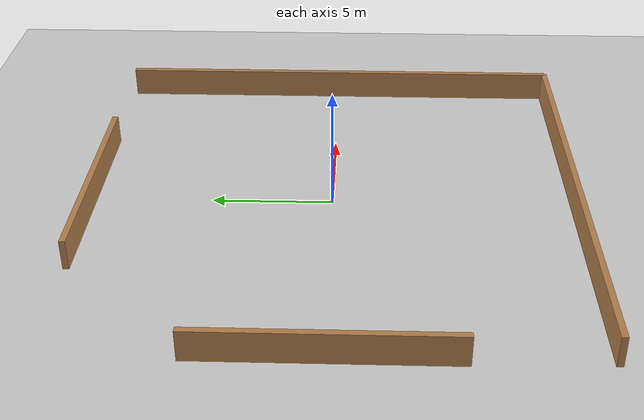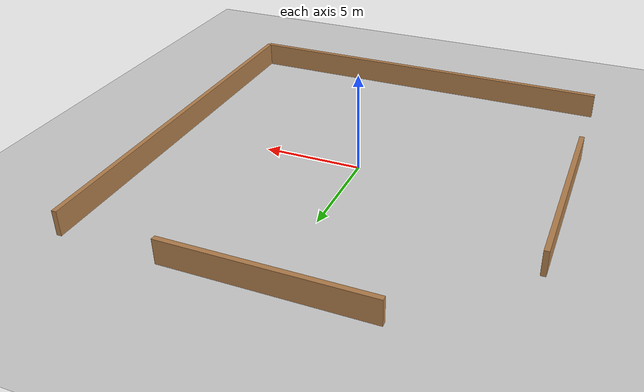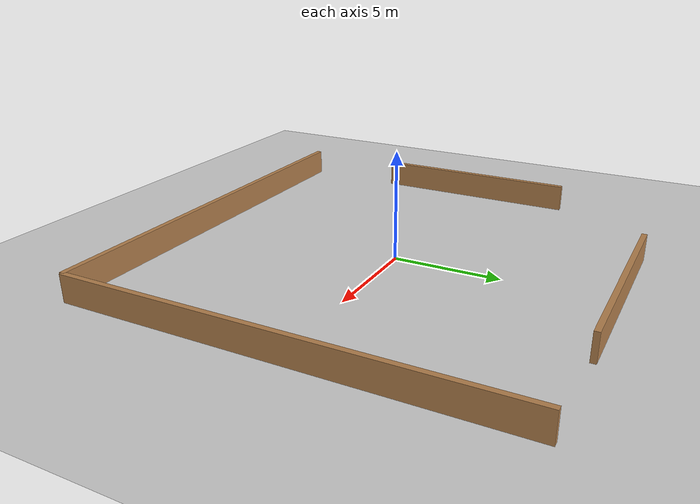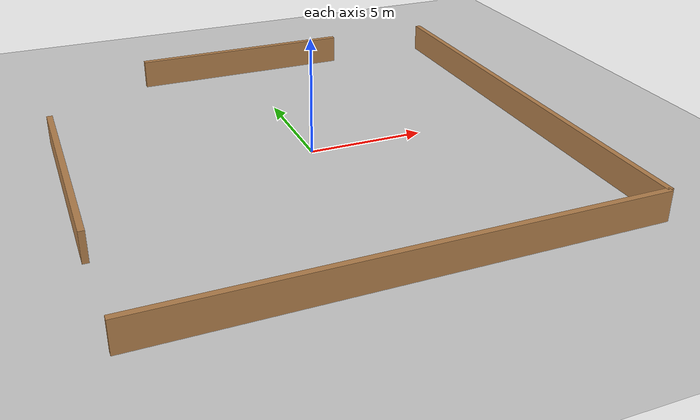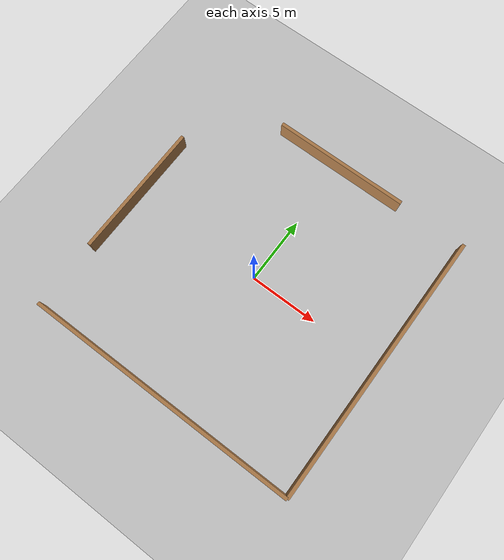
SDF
<?xml version="1.0" ?>
<sdf version="1.7">
  <world name="default">
    <plugin name="gazebo_ros_state" filename="libgazebo_ros_state.so">
      <ros>
        <namespace>/test</namespace>
        <argument>model_states:=model_states_demo</argument>
      </ros>
      <update_rate>1.0</update_rate>
    </plugin>
    <model name='ground_plane'>
      <static>1</static>
      <link name='link'>
        <collision name='collision'>
          <geometry>
            <plane>
              <normal>0 0 1</normal>
              <size>50 50</size>
            </plane>
          </geometry>
          <surface>
            <contact>
              <collide_bitmask>65535</collide_bitmask>
              <ode/>
            </contact>
            <friction>
              <ode>
                <mu>100</mu>
                <mu2>50</mu2>
              </ode>
              <torsional>
                <ode/>
              </torsional>
            </friction>
            <bounce/>
          </surface>
          <max_contacts>10</max_contacts>
        </collision>
        <visual name='visual'>
          <cast_shadows>0</cast_shadows>
          <geometry>
            <plane>
              <normal>0 0 1</normal>
              <size>50 50</size>
            </plane>
          </geometry>
          <material>
            <script>
              <uri>file://media/materials/scripts/gazebo.material</uri>
              <name>Gazebo/Grey</name>
            </script>
          </material>
        </visual>
        <self_collide>0</self_collide>
        <enable_wind>0</enable_wind>
        <kinematic>0</kinematic>
      </link>
    </model>
    <light name='sun' type='directional'>
      <cast_shadows>1</cast_shadows>
      <pose>0 0 10 0 -0 0</pose>
      <diffuse>0.8 0.8 0.8 1</diffuse>
      <specular>0.2 0.2 0.2 1</specular>
      <attenuation>
        <range>1000</range>
        <constant>0.9</constant>
        <linear>0.01</linear>
        <quadratic>0.001</quadratic>
      </attenuation>
      <direction>-0.5 0.1 -0.9</direction>
      <spot>
        <inner_angle>0</inner_angle>
        <outer_angle>0</outer_angle>
        <falloff>0</falloff>
      </spot>
    </light>
    <scene>
      <shadows>0</shadows>
      <ambient>0.4 0.4 0.4 1</ambient>
      <background>0.7 0.7 0.7 1</background>
    </scene>
    <gui fullscreen='0'>
      <camera name='user_camera'>
        <pose>0.114245 -3.45755 33.7709 0 1.5698 -0.010384</pose>
        <view_controller>orbit</view_controller>
        <projection_type>perspective</projection_type>
      </camera>
    </gui>
    <physics type='ode'>
      <real_time_update_rate>1000</real_time_update_rate>
      <max_step_size>0.001</max_step_size>
      <real_time_factor>1</real_time_factor>
      <ode>
        <solver>
          <type>quick</type>
          <iters>150</iters>
          <precon_iters>0</precon_iters>
          <sor>1.4</sor>
          <use_dynamic_moi_rescaling>1</use_dynamic_moi_rescaling>
        </solver>
        <constraints>
          <cfm>1e-05</cfm>
          <erp>0.2</erp>
          <contact_max_correcting_vel>2000</contact_max_correcting_vel>
          <contact_surface_layer>0.01</contact_surface_layer>
        </constraints>
      </ode>
    </physics>
    <model name='room_square'>
      <pose>0 0 0 0 -0 0</pose>
      <link name='Wall_1'>
        <collision name='Wall_1_Collision'>
          <geometry>
            <box>
              <size>20 0.25 2</size>
            </box>
          </geometry>
          <pose>0 0 0.25 0 -0 0</pose>
          <max_contacts>10</max_contacts>
          <surface>
            <contact>
              <ode/>
            </contact>
            <bounce/>
            <friction>
              <torsional>
                <ode/>
              </torsional>
              <ode/>
            </friction>
          </surface>
        </collision>
        <visual name='Wall_1_Visual'>
          <pose>0 0 0.25 0 -0 0</pose>
          <geometry>
            <box>
              <size>10 0.25 2</size>
            </box>
          </geometry>
          <material>
            <script>
              <uri>file://media/materials/scripts/gazebo.material</uri>
              <name>Gazebo/Wood</name>
            </script>
            <ambient>1 1 1 1</ambient>
          </material>
        </visual>
        <pose>-10 0 0 0 -0 1.5708</pose>
        <self_collide>0</self_collide>
        <enable_wind>0</enable_wind>
        <kinematic>0</kinematic>
      </link>
      <link name='Wall_2'>
        <collision name='Wall_2_Collision'>
          <geometry>
            <box>
              <size>20 0.25 2</size>
            </box>
          </geometry>
          <pose>0 0 0.25 0 -0 0</pose>
          <max_contacts>10</max_contacts>
          <surface>
            <contact>
              <ode/>
            </contact>
            <bounce/>
            <friction>
              <torsional>
                <ode/>
              </torsional>
              <ode/>
            </friction>
          </surface>
        </collision>
        <visual name='Wall_2_Visual'>
          <pose>0 0 0.25 0 -0 0</pose>
          <geometry>
            <box>
              <size>10 0.25 2</size>
            </box>
          </geometry>
          <material>
            <script>
              <uri>file://media/materials/scripts/gazebo.material</uri>
              <name>Gazebo/Wood</name>
            </script>
            <ambient>1 1 1 1</ambient>
          </material>
        </visual>
        <pose>0 10 0 0 -0 0</pose>
        <self_collide>0</self_collide>
        <enable_wind>0</enable_wind>
        <kinematic>0</kinematic>
      </link>
      <link name='Wall_3'>
        <collision name='Wall_3_Collision'>
          <geometry>
            <box>
              <size>20 0.25 2</size>
            </box>
          </geometry>
          <pose>0 0 0.25 0 -0 0</pose>
          <max_contacts>10</max_contacts>
          <surface>
            <contact>
              <ode/>
            </contact>
            <bounce/>
            <friction>
              <torsional>
                <ode/>
              </torsional>
              <ode/>
            </friction>
          </surface>
        </collision>
        <visual name='Wall_3_Visual'>
          <pose>0 0 0.25 0 -0 0</pose>
          <geometry>
            <box>
              <size>20 0.25 2</size>
            </box>
          </geometry>
          <material>
            <script>
              <uri>file://media/materials/scripts/gazebo.material</uri>
              <name>Gazebo/Wood</name>
            </script>
            <ambient>1 1 1 1</ambient>
          </material>
        </visual>
        <pose>10 0 0 0 0 -1.5708</pose>
        <self_collide>0</self_collide>
        <enable_wind>0</enable_wind>
        <kinematic>0</kinematic>
      </link>
      <link name='Wall_4'>
        <collision name='Wall_4_Collision'>
          <geometry>
            <box>
              <size>20 0.25 2</size>
            </box>
          </geometry>
          <pose>0 0 0.25 0 -0 0</pose>
          <max_contacts>10</max_contacts>
          <surface>
            <contact>
              <ode/>
            </contact>
            <bounce/>
            <friction>
              <torsional>
                <ode/>
              </torsional>
              <ode/>
            </friction>
          </surface>
        </collision>
        <visual name='Wall_4_Visual'>
          <pose>0 0 0.25 0 -0 0</pose>
          <geometry>
            <box>
              <size>20 0.25 2</size>
            </box>
          </geometry>
          <material>
            <script>
              <uri>file://media/materials/scripts/gazebo.material</uri>
              <name>Gazebo/Wood</name>
            </script>
            <ambient>1 1 1 1</ambient>
          </material>
        </visual>
        <pose>0 -10 0 0 -0 3.14159</pose>
        <self_collide>0</self_collide>
        <enable_wind>0</enable_wind>
        <kinematic>0</kinematic>
      </link>
      <static>1</static>
    </model>
  </world>
</sdf>
